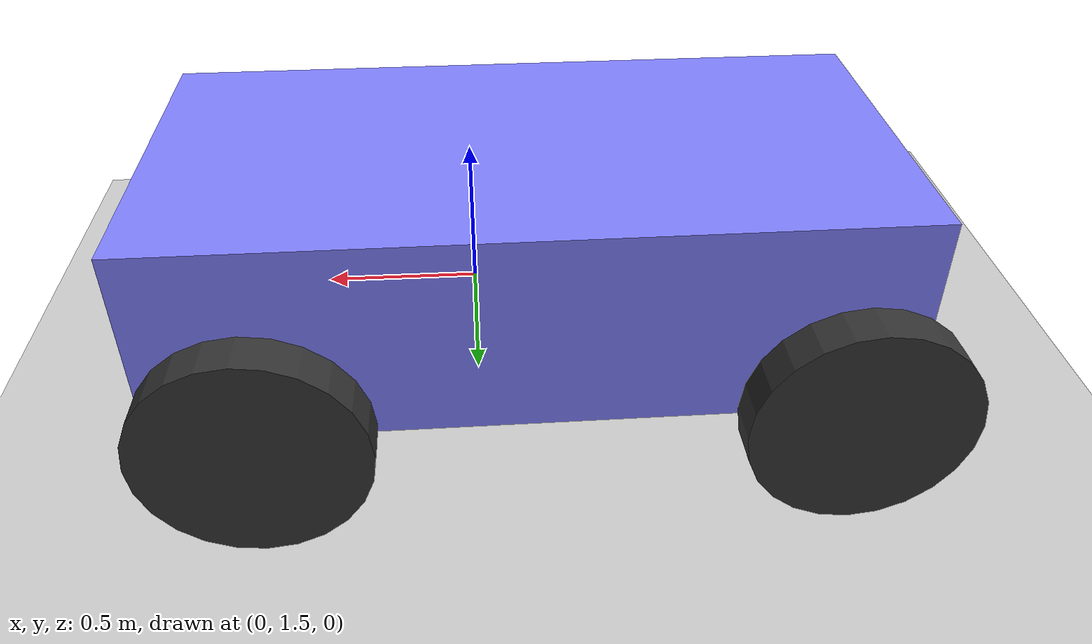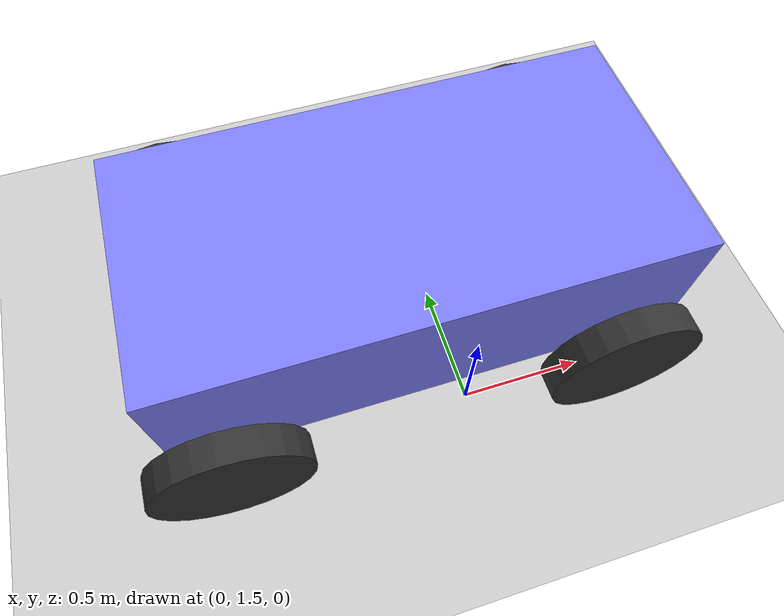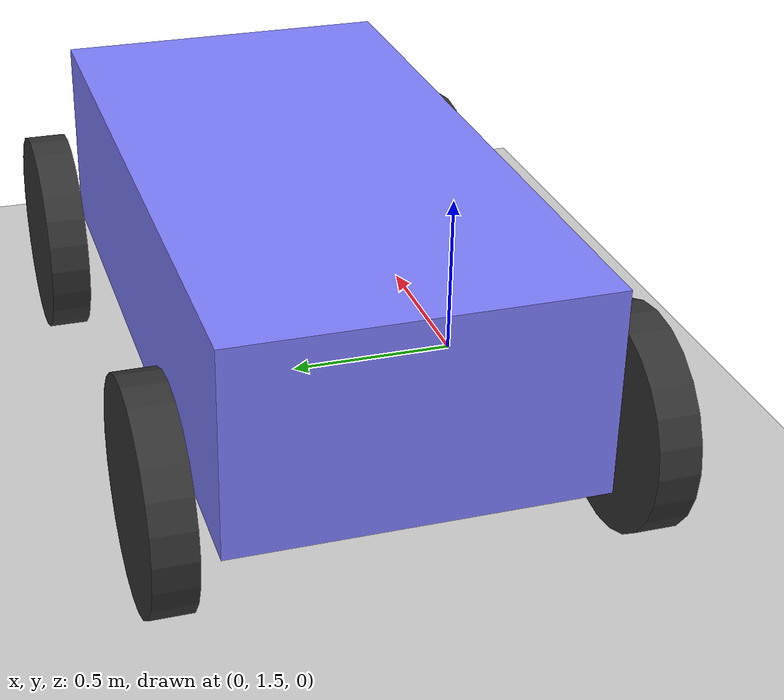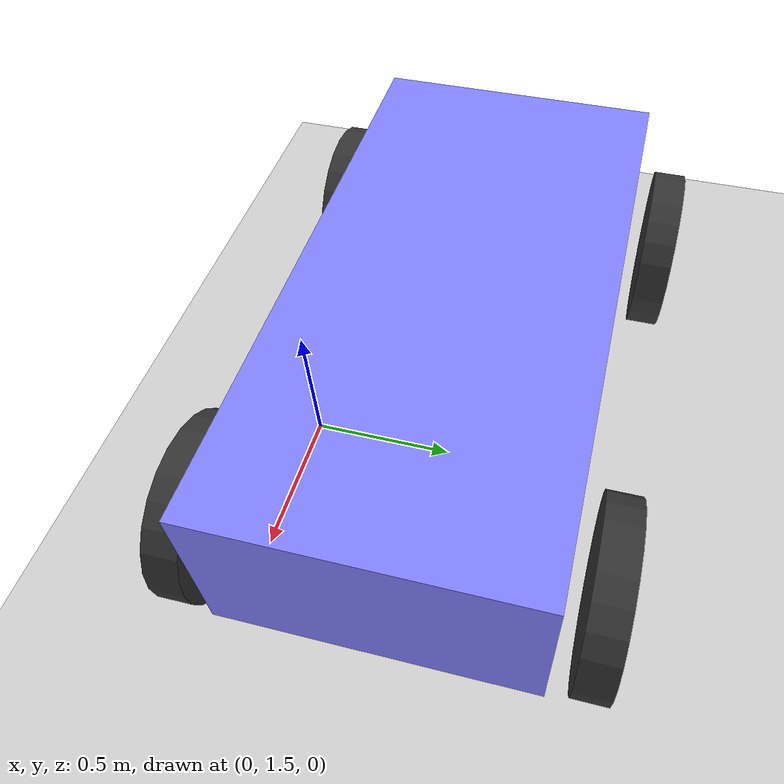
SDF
<?xml version="1.0" ?>
<sdf version="1.6">
  <world name="diff_drive">

    <physics name="1ms" type="ignored">
      <max_step_size>0.001</max_step_size>
      <real_time_factor>1.0</real_time_factor>
    </physics>
    <plugin
      filename="gz-sim-physics-system"
      name="gz::sim::systems::Physics">
    </plugin>
    <plugin
      filename="gz-sim-user-commands-system"
      name="gz::sim::systems::UserCommands">
    </plugin>
    <plugin
      filename="gz-sim-scene-broadcaster-system"
      name="gz::sim::systems::SceneBroadcaster">
    </plugin>

    <light type="directional" name="sun">
      <cast_shadows>true</cast_shadows>
      <pose>0 0 10 0 0 0</pose>
      <diffuse>1 1 1 1</diffuse>
      <specular>0.5 0.5 0.5 1</specular>
      <attenuation>
        <range>1000</range>
        <constant>0.9</constant>
        <linear>0.01</linear>
        <quadratic>0.001</quadratic>
      </attenuation>
      <direction>-0.5 0.1 -0.9</direction>
    </light>

    <model name="ground_plane">
      <static>true</static>
      <link name="link">
        <collision name="collision">
          <geometry>
            <plane>
              <normal>0 0 1</normal>
              <size>100 100</size>
            </plane>
          </geometry>
          <surface>
            <friction>
              <ode>
                <mu>50</mu>
              </ode>
              <bullet>
                <friction>1</friction>
                <friction2>1</friction2>
                <rolling_friction>0.1</rolling_friction>
              </bullet>
            </friction>
          </surface>
        </collision>
        <visual name="visual">
          <geometry>
            <plane>
              <normal>0 0 1</normal>
              <size>100 100</size>
            </plane>
          </geometry>
          <material>
            <ambient>0.8 0.8 0.8 1</ambient>
            <diffuse>0.8 0.8 0.8 1</diffuse>
            <specular>0.8 0.8 0.8 1</specular>
          </material>
        </visual>
      </link>
    </model>

    <model name='vehicle_blue'>
      <pose>0 2 0.325 0 -0 0</pose>

      <link name='chassis'>
        <pose>-0.151427 -0 0.175 0 -0 0</pose>
        <inertial>
          <mass>1.14395</mass>
          <inertia>
            <ixx>0.126164</ixx>
            <ixy>0</ixy>
            <ixz>0</ixz>
            <iyy>0.416519</iyy>
            <iyz>0</iyz>
            <izz>0.481014</izz>
          </inertia>
        </inertial>
        <visual name='visual'>
          <geometry>
            <box>
              <size>2.01142 1 0.568726</size>
            </box>
          </geometry>
          <material>
            <ambient>0.5 0.5 1.0 1</ambient>
            <diffuse>0.5 0.5 1.0 1</diffuse>
            <specular>0.0 0.0 1.0 1</specular>
          </material>
        </visual>
        <collision name='collision'>
          <geometry>
            <box>
              <size>2.01142 1 0.568726</size>
            </box>
          </geometry>
        </collision>
      </link>

      <link name='front_left_wheel'>
        <pose>0.554283 0.625029 -0.025 -1.5707 0 0</pose>
        <inertial>
          <mass>2</mass>
          <inertia>
            <ixx>0.145833</ixx>
            <ixy>0</ixy>
            <ixz>0</ixz>
            <iyy>0.145833</iyy>
            <iyz>0</iyz>
            <izz>0.125</izz>
          </inertia>
        </inertial>
        <visual name='visual'>
          <geometry>
            <cylinder>
            <length>0.1143</length>
              <radius>0.3</radius>
            </cylinder>
          </geometry>
          <material>
            <ambient>0.2 0.2 0.2 1</ambient>
            <diffuse>0.2 0.2 0.2 1</diffuse>
            <specular>0.2 0.2 0.2 1</specular>
          </material>
        </visual>
        <collision name='collision'>
          <geometry>
            <cylinder>
            <length>0.1143</length>
              <radius>0.3</radius>
            </cylinder>
          </geometry>
          <surface>
            <friction>
              <ode>
                <mu>1</mu>
                <mu2>1</mu2>
                <slip1>0.035</slip1>
                <slip2>0</slip2>
                <fdir1>0 0 1</fdir1>
              </ode>
              <bullet>
                <friction>1</friction>
                <friction2>1</friction2>
                <rolling_friction>0.1</rolling_friction>
              </bullet>
            </friction>
          </surface>
        </collision>
      </link>

      <link name='rear_left_wheel'>
        <pose>-0.957138 0.625029 -0.025 -1.5707 0 0</pose>
        <inertial>
          <mass>2</mass>
          <inertia>
            <ixx>0.145833</ixx>
            <ixy>0</ixy>
            <ixz>0</ixz>
            <iyy>0.145833</iyy>
            <iyz>0</iyz>
            <izz>0.125</izz>
          </inertia>
        </inertial>
        <visual name='visual'>
          <geometry>
            <cylinder>
            <length>0.1143</length>
              <radius>0.3</radius>
            </cylinder>
          </geometry>
          <material>
            <ambient>0.2 0.2 0.2 1</ambient>
            <diffuse>0.2 0.2 0.2 1</diffuse>
            <specular>0.2 0.2 0.2 1</specular>
          </material>
        </visual>
        <collision name='collision'>
          <geometry>
            <cylinder>
            <length>0.1143</length>
              <radius>0.3</radius>
            </cylinder>
          </geometry>
          <surface>
            <friction>
              <ode>
                <mu>1</mu>
                <mu2>1</mu2>
                <slip1>0.035</slip1>
                <slip2>0</slip2>
                <fdir1>0 0 1</fdir1>
              </ode>
              <bullet>
                <friction>1</friction>
                <friction2>1</friction2>
                <rolling_friction>0.1</rolling_friction>
              </bullet>
            </friction>
          </surface>
        </collision>
      </link>

      <link name='front_right_wheel'>
        <pose>0.554282 -0.625029 -0.025 -1.5707 0 0</pose>
        <inertial>
          <mass>2</mass>
          <inertia>
            <ixx>0.145833</ixx>
            <ixy>0</ixy>
            <ixz>0</ixz>
            <iyy>0.145833</iyy>
            <iyz>0</iyz>
            <izz>0.125</izz>
          </inertia>
        </inertial>
        <visual name='visual'>
          <geometry>
            <cylinder>
            <length>0.1143</length>
              <radius>0.3</radius>
            </cylinder>
          </geometry>
          <material>
            <ambient>0.2 0.2 0.2 1</ambient>
            <diffuse>0.2 0.2 0.2 1</diffuse>
            <specular>0.2 0.2 0.2 1</specular>
          </material>
        </visual>
        <collision name='collision'>
          <geometry>
            <cylinder>
            <length>0.1143</length>
              <radius>0.3</radius>
            </cylinder>
          </geometry>
          <surface>
            <friction>
              <ode>
                <mu>1</mu>
                <mu2>1</mu2>
                <slip1>0.035</slip1>
                <slip2>0</slip2>
                <fdir1>0 0 1</fdir1>
              </ode>
              <bullet>
                <friction>1</friction>
                <friction2>1</friction2>
                <rolling_friction>0.1</rolling_friction>
              </bullet>
            </friction>
          </surface>
        </collision>
      </link>

      <link name='rear_right_wheel'>
        <pose>-0.957138 -0.625029 -0.025 -1.5707 0 0</pose>
        <inertial>
          <mass>2</mass>
          <inertia>
            <ixx>0.145833</ixx>
            <ixy>0</ixy>
            <ixz>0</ixz>
            <iyy>0.145833</iyy>
            <iyz>0</iyz>
            <izz>0.125</izz>
          </inertia>
        </inertial>
        <visual name='visual'>
          <geometry>
            <cylinder>
            <length>0.1143</length>
              <radius>0.3</radius>
            </cylinder>
          </geometry>
          <material>
            <ambient>0.2 0.2 0.2 1</ambient>
            <diffuse>0.2 0.2 0.2 1</diffuse>
            <specular>0.2 0.2 0.2 1</specular>
          </material>
        </visual>
        <collision name='collision'>
          <geometry>
            <cylinder>
            <length>0.1143</length>
              <radius>0.3</radius>
            </cylinder>
          </geometry>
          <surface>
            <friction>
              <ode>
                <mu>1</mu>
                <mu2>1</mu2>
                <slip1>0.035</slip1>
                <slip2>0</slip2>
                <fdir1>0 0 1</fdir1>
              </ode>
              <bullet>
                <friction>1</friction>
                <friction2>1</friction2>
                <rolling_friction>0.1</rolling_friction>
              </bullet>
            </friction>
          </surface>
        </collision>
      </link>

      <joint name='front_left_wheel_joint' type='revolute'>
        <parent>chassis</parent>
        <child>front_left_wheel</child>
        <axis>
          <xyz>0 0 1</xyz>
          <limit>
            <lower>-1.79769e+308</lower>
            <upper>1.79769e+308</upper>
          </limit>
        </axis>
      </joint>

      <joint name='front_right_wheel_joint' type='revolute'>
        <parent>chassis</parent>
        <child>front_right_wheel</child>
        <axis>
          <xyz>0 0 1</xyz>
          <limit>
            <lower>-1.79769e+308</lower>
            <upper>1.79769e+308</upper>
          </limit>
        </axis>
      </joint>

      <joint name='rear_left_wheel_joint' type='revolute'>
        <parent>chassis</parent>
        <child>rear_left_wheel</child>
        <axis>
          <xyz>0 0 1</xyz>
          <limit>
            <lower>-1.79769e+308</lower>
            <upper>1.79769e+308</upper>
          </limit>
        </axis>
      </joint>

      <joint name='rear_right_wheel_joint' type='revolute'>
        <parent>chassis</parent>
        <child>rear_right_wheel</child>
        <axis>
          <xyz>0 0 1</xyz>
          <limit>
            <lower>-1.79769e+308</lower>
            <upper>1.79769e+308</upper>
          </limit>
        </axis>
      </joint>

      <plugin
        filename="gz-sim-diff-drive-system"
        name="gz::sim::systems::DiffDrive">
        <left_joint>front_left_wheel_joint</left_joint>
        <left_joint>rear_left_wheel_joint</left_joint>
        <right_joint>front_right_wheel_joint</right_joint>
        <right_joint>rear_right_wheel_joint</right_joint>
        <wheel_separation>1.25</wheel_separation>
        <wheel_radius>0.3</wheel_radius>
        <max_linear_acceleration>1</max_linear_acceleration>
        <min_linear_acceleration>-1</min_linear_acceleration>
        <max_angular_acceleration>2</max_angular_acceleration>
        <min_angular_acceleration>-2</min_angular_acceleration>
        <max_linear_velocity>0.5</max_linear_velocity>
        <min_linear_velocity>-0.5</min_linear_velocity>
        <max_angular_velocity>1</max_angular_velocity>
        <min_angular_velocity>-1</min_angular_velocity>
      </plugin>

    </model>

  </world>
</sdf>
